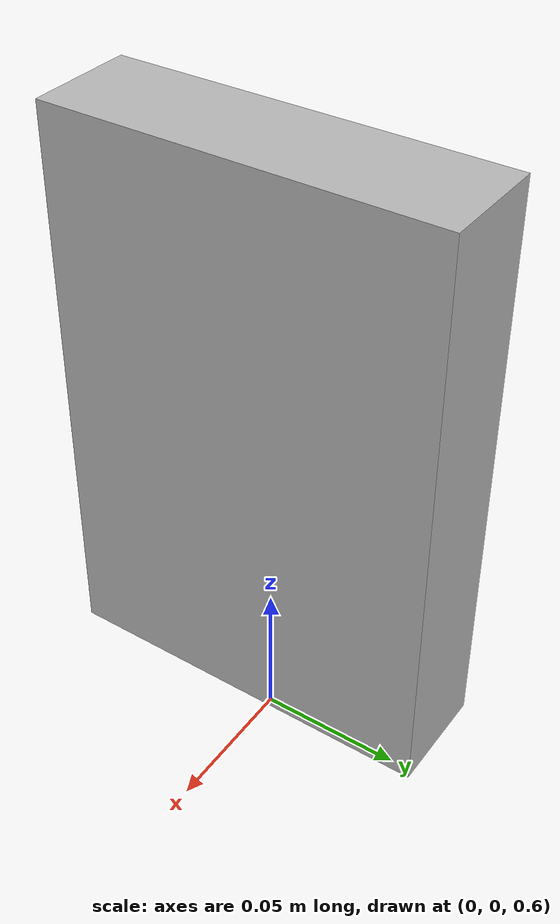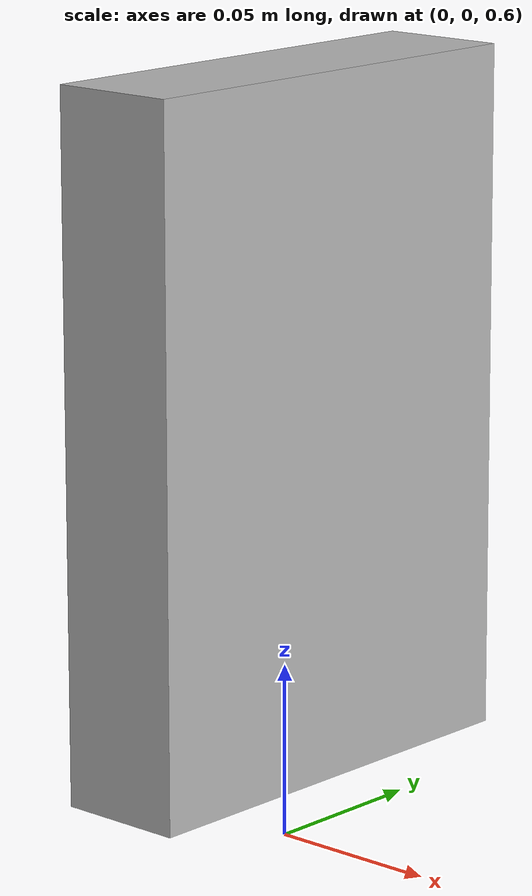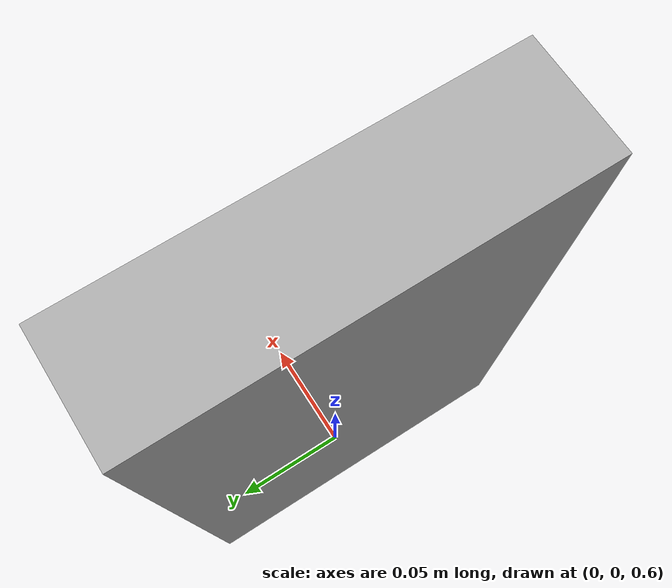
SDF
<sdf version="1.3">
<model name="cafetfilter">
  <pose>0 0 0.72 1.57 0.00 1.57</pose>
  <static>false</static>
    <link name="link">
      <inertial>
        <mass>1.0</mass>
        <inertia>
          <ixx>1.0</ixx>
          <ixy>0.0</ixy>
          <ixz>0.0</ixz>
          <iyy>1.0</iyy>
          <iyz>0.0</iyz>
          <izz>1.0</izz>
        </inertia>
      </inertial>
      <collision name="collision">
        <geometry>
          <box>
            <size>0.132 0.197 0.037</size>
          </box>
        </geometry>
      </collision>
      <visual name="visual">
        <geometry>
          <box>
            <size>0.132 0.197 0.037</size>
          </box>
        </geometry>
	<material>
          <script>
            <uri>model://cafetfilter/materials/scripts</uri>
            <uri>model://cafetfilter/materials/textures</uri>
            <name>Cafetfilter/Diffuse</name>
          </script>
        </material>

      </visual>
    </link>
  </model>
</sdf>
